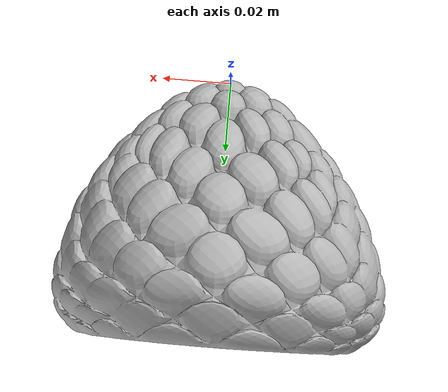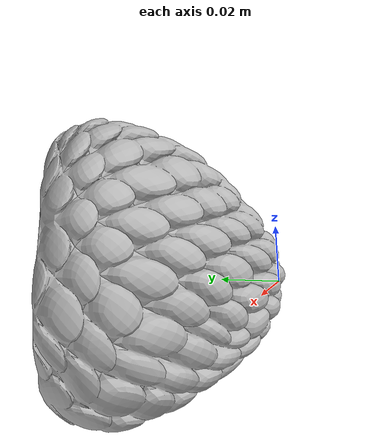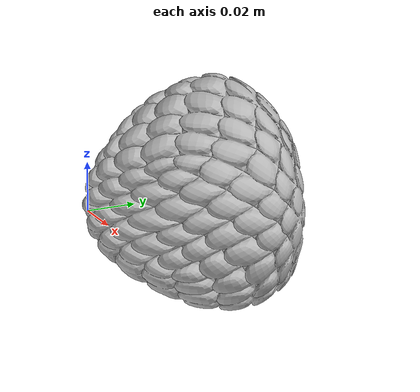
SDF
<?xml version="1.0"?>

<sdf version="1.6">
  <model name='bad_fruit'>
    <static>true</static>
    <link name="body">
      <pose>0 0 0 0 0 0</pose>

        <visual name="visual">
          <geometry>
            <mesh><uri>model://bad_fruit/meshes/bad_fruit.obj</uri></mesh>
          </geometry>
        </visual>

        <collision name="collision">
          <geometry>
            <mesh><uri>model://bad_fruit/meshes/bad_fruit.obj</uri></mesh>
          </geometry>
        </collision>

    </link>
  </model>
</sdf>
